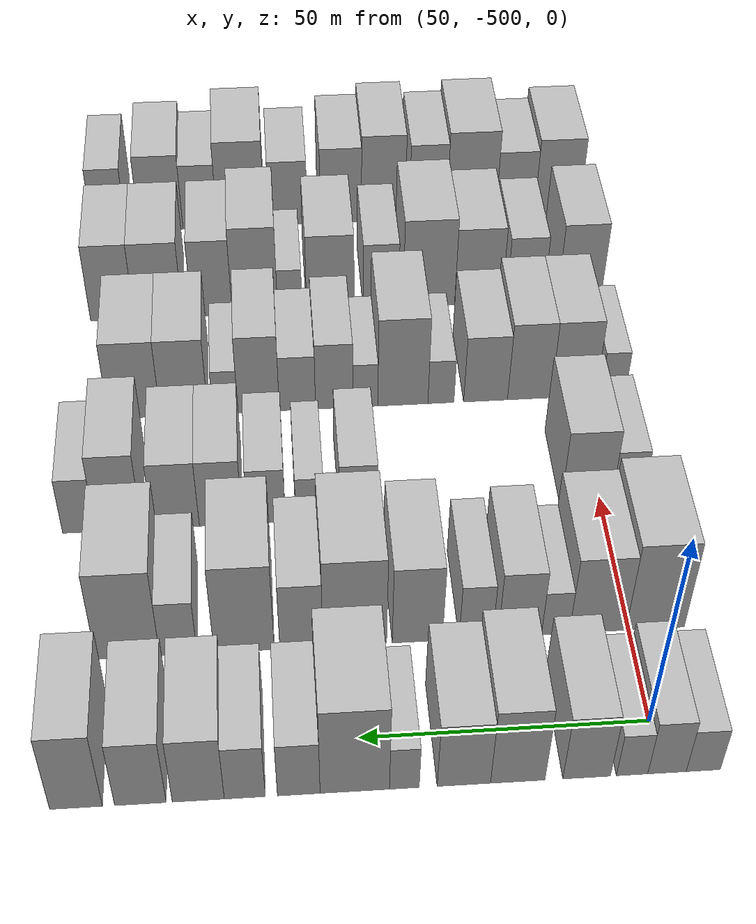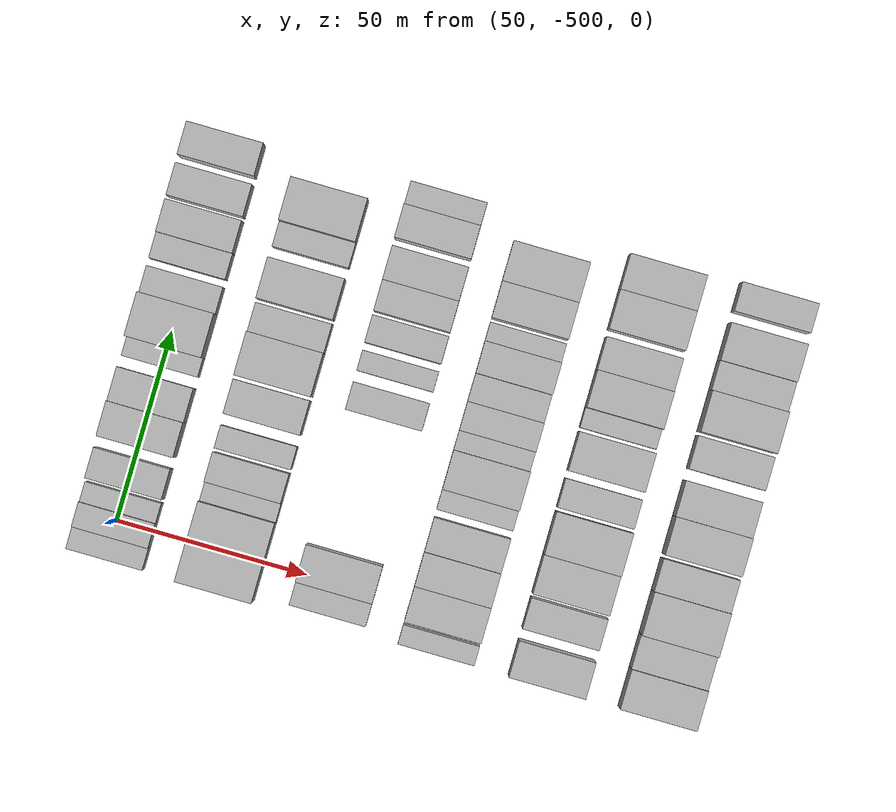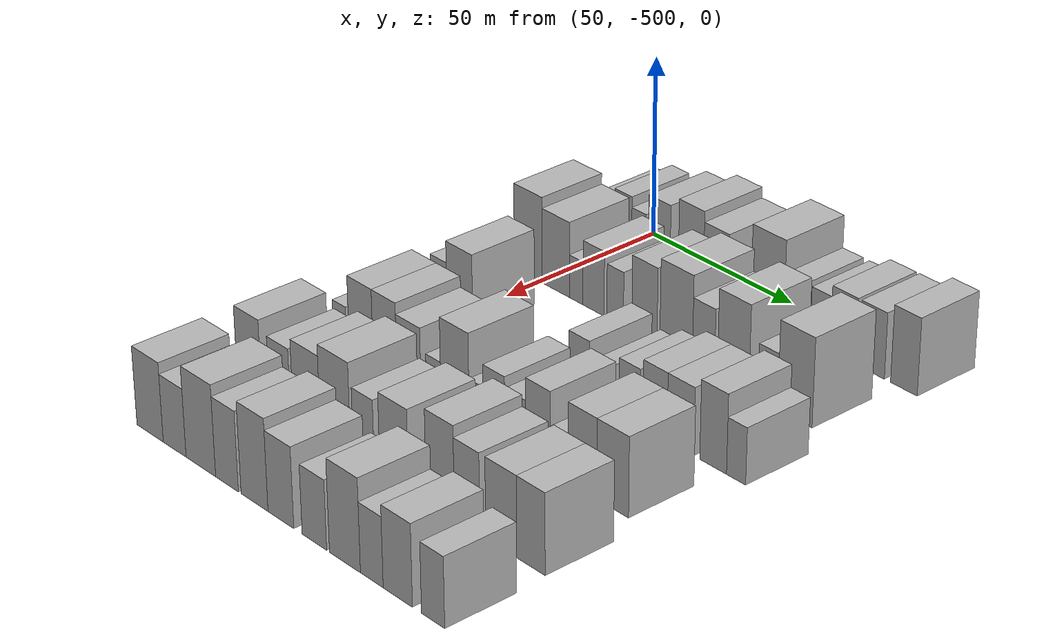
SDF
<sdf version="1.6">
 <world name="default">
  <model name="building_1">
   <static>1</static>
   <pose>50.0000 -507.1129 0 0.000000 0.000000 0.000000</pose>
   <link name="link">
    <pose>0 0 6.00 0 0 0</pose>
    <collision name="collision"><geometry><box><size>20.0000 5.7743 12.0000</size></box></geometry></collision>
    <visual name="visual">
     <cast_shadows>0</cast_shadows>
     <geometry><box><size>20.0000 5.7743 12.0000</size></box></geometry>
     <material>
      <script>
       <uri>model://HANNAS_wall/materials/scripts</uri>
       <uri>model://HANNAS_wall/materials/textures</uri>
       <name>vrc/HANNAS_wall</name>
      </script>
     </material>
    </visual>
   </link>
  </model>
  <model name="building_2">
   <static>1</static>
   <pose>50.0000 -500.9743 0 0.000000 0.000000 0.000000</pose>
   <link name="link">
    <pose>0 0 7.50 0 0 0</pose>
    <collision name="collision"><geometry><box><size>20.0000 6.5029 15.0000</size></box></geometry></collision>
    <visual name="visual">
     <cast_shadows>0</cast_shadows>
     <geometry><box><size>20.0000 6.5029 15.0000</size></box></geometry>
     <material>
      <script>
       <uri>model://HANNAS_wall/materials/scripts</uri>
       <uri>model://HANNAS_wall/materials/textures</uri>
       <name>vrc/HANNAS_wall</name>
      </script>
     </material>
    </visual>
   </link>
  </model>
  <model name="building_3">
   <static>1</static>
   <pose>50.0000 -495.0810 0 0.000000 0.000000 0.000000</pose>
   <link name="link">
    <pose>0 0 6.00 0 0 0</pose>
    <collision name="collision"><geometry><box><size>20.0000 5.2837 12.0000</size></box></geometry></collision>
    <visual name="visual">
     <cast_shadows>0</cast_shadows>
     <geometry><box><size>20.0000 5.2837 12.0000</size></box></geometry>
     <material>
      <script>
       <uri>model://HANNAS_wall/materials/scripts</uri>
       <uri>model://HANNAS_wall/materials/textures</uri>
       <name>vrc/HANNAS_wall</name>
      </script>
     </material>
    </visual>
   </link>
  </model>
  <model name="building_4">
   <static>1</static>
   <pose>50.0000 -487.4331 0 0.000000 0.000000 0.000000</pose>
   <link name="link">
    <pose>0 0 9.00 0 0 0</pose>
    <collision name="collision"><geometry><box><size>20.0000 8.0121 18.0000</size></box></geometry></collision>
    <visual name="visual">
     <cast_shadows>0</cast_shadows>
     <geometry><box><size>20.0000 8.0121 18.0000</size></box></geometry>
     <material>
      <script>
       <uri>model://HANNAS_wall/materials/scripts</uri>
       <uri>model://HANNAS_wall/materials/textures</uri>
       <name>vrc/HANNAS_wall</name>
      </script>
     </material>
    </visual>
   </link>
  </model>
  <model name="building_5">
   <static>1</static>
   <pose>50.0000 -475.8678 0 0.000000 0.000000 0.000000</pose>
   <link name="link">
    <pose>0 0 10.50 0 0 0</pose>
    <collision name="collision"><geometry><box><size>20.0000 9.1184 21.0000</size></box></geometry></collision>
    <visual name="visual">
     <cast_shadows>0</cast_shadows>
     <geometry><box><size>20.0000 9.1184 21.0000</size></box></geometry>
     <material>
      <script>
       <uri>model://HANNAS_wall/materials/scripts</uri>
       <uri>model://HANNAS_wall/materials/textures</uri>
       <name>vrc/HANNAS_wall</name>
      </script>
     </material>
    </visual>
   </link>
  </model>
  <model name="building_6">
   <static>1</static>
   <pose>50.0000 -466.8552 0 0.000000 0.000000 0.000000</pose>
   <link name="link">
    <pose>0 0 9.00 0 0 0</pose>
    <collision name="collision"><geometry><box><size>20.0000 8.9067 18.0000</size></box></geometry></collision>
    <visual name="visual">
     <cast_shadows>0</cast_shadows>
     <geometry><box><size>20.0000 8.9067 18.0000</size></box></geometry>
     <material>
      <script>
       <uri>model://HANNAS_wall/materials/scripts</uri>
       <uri>model://HANNAS_wall/materials/textures</uri>
       <name>vrc/HANNAS_wall</name>
      </script>
     </material>
    </visual>
   </link>
  </model>
  <model name="building_7">
   <static>1</static>
   <pose>50.0000 -456.9294 0 0.000000 0.000000 0.000000</pose>
   <link name="link">
    <pose>0 0 6.00 0 0 0</pose>
    <collision name="collision"><geometry><box><size>20.0000 4.9449 12.0000</size></box></geometry></collision>
    <visual name="visual">
     <cast_shadows>0</cast_shadows>
     <geometry><box><size>20.0000 4.9449 12.0000</size></box></geometry>
     <material>
      <script>
       <uri>model://HANNAS_wall/materials/scripts</uri>
       <uri>model://HANNAS_wall/materials/textures</uri>
       <name>vrc/HANNAS_wall</name>
      </script>
     </material>
    </visual>
   </link>
  </model>
  <model name="building_8">
   <static>1</static>
   <pose>50.0000 -448.7046 0 0.000000 0.000000 0.000000</pose>
   <link name="link">
    <pose>0 0 12.00 0 0 0</pose>
    <collision name="collision"><geometry><box><size>20.0000 11.5046 24.0000</size></box></geometry></collision>
    <visual name="visual">
     <cast_shadows>0</cast_shadows>
     <geometry><box><size>20.0000 11.5046 24.0000</size></box></geometry>
     <material>
      <script>
       <uri>model://HANNAS_wall/materials/scripts</uri>
       <uri>model://HANNAS_wall/materials/textures</uri>
       <name>vrc/HANNAS_wall</name>
      </script>
     </material>
    </visual>
   </link>
  </model>
  <model name="building_9">
   <static>1</static>
   <pose>50.0000 -439.4274 0 0.000000 0.000000 0.000000</pose>
   <link name="link">
    <pose>0 0 7.50 0 0 0</pose>
    <collision name="collision"><geometry><box><size>20.0000 7.0497 15.0000</size></box></geometry></collision>
    <visual name="visual">
     <cast_shadows>0</cast_shadows>
     <geometry><box><size>20.0000 7.0497 15.0000</size></box></geometry>
     <material>
      <script>
       <uri>model://HANNAS_wall/materials/scripts</uri>
       <uri>model://HANNAS_wall/materials/textures</uri>
       <name>vrc/HANNAS_wall</name>
      </script>
     </material>
    </visual>
   </link>
  </model>
  <model name="building_10">
   <static>1</static>
   <pose>50.0000 -430.5206 0 0.000000 0.000000 0.000000</pose>
   <link name="link">
    <pose>0 0 7.50 0 0 0</pose>
    <collision name="collision"><geometry><box><size>20.0000 6.7640 15.0000</size></box></geometry></collision>
    <visual name="visual">
     <cast_shadows>0</cast_shadows>
     <geometry><box><size>20.0000 6.7640 15.0000</size></box></geometry>
     <material>
      <script>
       <uri>model://HANNAS_wall/materials/scripts</uri>
       <uri>model://HANNAS_wall/materials/textures</uri>
       <name>vrc/HANNAS_wall</name>
      </script>
     </material>
    </visual>
   </link>
  </model>
  <model name="building_11">
   <static>1</static>
   <pose>50.0000 -422.8623 0 0.000000 0.000000 0.000000</pose>
   <link name="link">
    <pose>0 0 9.00 0 0 0</pose>
    <collision name="collision"><geometry><box><size>20.0000 8.5525 18.0000</size></box></geometry></collision>
    <visual name="visual">
     <cast_shadows>0</cast_shadows>
     <geometry><box><size>20.0000 8.5525 18.0000</size></box></geometry>
     <material>
      <script>
       <uri>model://HANNAS_wall/materials/scripts</uri>
       <uri>model://HANNAS_wall/materials/textures</uri>
       <name>vrc/HANNAS_wall</name>
      </script>
     </material>
    </visual>
   </link>
  </model>
  <model name="building_12">
   <static>1</static>
   <pose>50.0000 -413.3588 0 0.000000 0.000000 0.000000</pose>
   <link name="link">
    <pose>0 0 9.00 0 0 0</pose>
    <collision name="collision"><geometry><box><size>20.0000 8.4544 18.0000</size></box></geometry></collision>
    <visual name="visual">
     <cast_shadows>0</cast_shadows>
     <geometry><box><size>20.0000 8.4544 18.0000</size></box></geometry>
     <material>
      <script>
       <uri>model://HANNAS_wall/materials/scripts</uri>
       <uri>model://HANNAS_wall/materials/textures</uri>
       <name>vrc/HANNAS_wall</name>
      </script>
     </material>
    </visual>
   </link>
  </model>
  <model name="building_13">
   <static>1</static>
   <pose>50.0000 -402.8247 0 0.000000 0.000000 0.000000</pose>
   <link name="link">
    <pose>0 0 10.50 0 0 0</pose>
    <collision name="collision"><geometry><box><size>20.0000 8.6138 21.0000</size></box></geometry></collision>
    <visual name="visual">
     <cast_shadows>0</cast_shadows>
     <geometry><box><size>20.0000 8.6138 21.0000</size></box></geometry>
     <material>
      <script>
       <uri>model://HANNAS_wall/materials/scripts</uri>
       <uri>model://HANNAS_wall/materials/textures</uri>
       <name>vrc/HANNAS_wall</name>
      </script>
     </material>
    </visual>
   </link>
  </model>
  <model name="building_108">
   <static>1</static>
   <pose>79.0000 -504.6940 0 0.000000 0.000000 0.000000</pose>
   <link name="link">
    <pose>0 0 12.00 0 0 0</pose>
    <collision name="collision"><geometry><box><size>20.0000 10.6121 24.0000</size></box></geometry></collision>
    <visual name="visual">
     <cast_shadows>0</cast_shadows>
     <geometry><box><size>20.0000 10.6121 24.0000</size></box></geometry>
     <material>
      <script>
       <uri>model://HANNAS_wall/materials/scripts</uri>
       <uri>model://HANNAS_wall/materials/textures</uri>
       <name>vrc/HANNAS_wall</name>
      </script>
     </material>
    </visual>
   </link>
  </model>
  <model name="building_109">
   <static>1</static>
   <pose>79.0000 -494.2660 0 0.000000 0.000000 0.000000</pose>
   <link name="link">
    <pose>0 0 10.50 0 0 0</pose>
    <collision name="collision"><geometry><box><size>20.0000 10.2439 21.0000</size></box></geometry></collision>
    <visual name="visual">
     <cast_shadows>0</cast_shadows>
     <geometry><box><size>20.0000 10.2439 21.0000</size></box></geometry>
     <material>
      <script>
       <uri>model://HANNAS_wall/materials/scripts</uri>
       <uri>model://HANNAS_wall/materials/textures</uri>
       <name>vrc/HANNAS_wall</name>
      </script>
     </material>
    </visual>
   </link>
  </model>
  <model name="building_110">
   <static>1</static>
   <pose>79.0000 -486.6266 0 0.000000 0.000000 0.000000</pose>
   <link name="link">
    <pose>0 0 6.00 0 0 0</pose>
    <collision name="collision"><geometry><box><size>20.0000 5.0349 12.0000</size></box></geometry></collision>
    <visual name="visual">
     <cast_shadows>0</cast_shadows>
     <geometry><box><size>20.0000 5.0349 12.0000</size></box></geometry>
     <material>
      <script>
       <uri>model://HANNAS_wall/materials/scripts</uri>
       <uri>model://HANNAS_wall/materials/textures</uri>
       <name>vrc/HANNAS_wall</name>
      </script>
     </material>
    </visual>
   </link>
  </model>
  <model name="building_111">
   <static>1</static>
   <pose>79.0000 -480.2095 0 0.000000 0.000000 0.000000</pose>
   <link name="link">
    <pose>0 0 9.00 0 0 0</pose>
    <collision name="collision"><geometry><box><size>20.0000 7.7994 18.0000</size></box></geometry></collision>
    <visual name="visual">
     <cast_shadows>0</cast_shadows>
     <geometry><box><size>20.0000 7.7994 18.0000</size></box></geometry>
     <material>
      <script>
       <uri>model://HANNAS_wall/materials/scripts</uri>
       <uri>model://HANNAS_wall/materials/textures</uri>
       <name>vrc/HANNAS_wall</name>
      </script>
     </material>
    </visual>
   </link>
  </model>
  <model name="building_112">
   <static>1</static>
   <pose>79.0000 -472.3011 0 0.000000 0.000000 0.000000</pose>
   <link name="link">
    <pose>0 0 7.50 0 0 0</pose>
    <collision name="collision"><geometry><box><size>20.0000 6.0173 15.0000</size></box></geometry></collision>
    <visual name="visual">
     <cast_shadows>0</cast_shadows>
     <geometry><box><size>20.0000 6.0173 15.0000</size></box></geometry>
     <material>
      <script>
       <uri>model://HANNAS_wall/materials/scripts</uri>
       <uri>model://HANNAS_wall/materials/textures</uri>
       <name>vrc/HANNAS_wall</name>
      </script>
     </material>
    </visual>
   </link>
  </model>
  <model name="building_113">
   <static>1</static>
   <pose>79.0000 -461.7940 0 0.000000 0.000000 0.000000</pose>
   <link name="link">
    <pose>0 0 10.50 0 0 0</pose>
    <collision name="collision"><geometry><box><size>20.0000 8.9969 21.0000</size></box></geometry></collision>
    <visual name="visual">
     <cast_shadows>0</cast_shadows>
     <geometry><box><size>20.0000 8.9969 21.0000</size></box></geometry>
     <material>
      <script>
       <uri>model://HANNAS_wall/materials/scripts</uri>
       <uri>model://HANNAS_wall/materials/textures</uri>
       <name>vrc/HANNAS_wall</name>
      </script>
     </material>
    </visual>
   </link>
  </model>
  <model name="building_114">
   <static>1</static>
   <pose>79.0000 -450.5983 0 0.000000 0.000000 0.000000</pose>
   <link name="link">
    <pose>0 0 12.00 0 0 0</pose>
    <collision name="collision"><geometry><box><size>20.0000 11.3943 24.0000</size></box></geometry></collision>
    <visual name="visual">
     <cast_shadows>0</cast_shadows>
     <geometry><box><size>20.0000 11.3943 24.0000</size></box></geometry>
     <material>
      <script>
       <uri>model://HANNAS_wall/materials/scripts</uri>
       <uri>model://HANNAS_wall/materials/textures</uri>
       <name>vrc/HANNAS_wall</name>
      </script>
     </material>
    </visual>
   </link>
  </model>
  <model name="building_115">
   <static>1</static>
   <pose>79.0000 -441.0901 0 0.000000 0.000000 0.000000</pose>
   <link name="link">
    <pose>0 0 9.00 0 0 0</pose>
    <collision name="collision"><geometry><box><size>20.0000 7.6221 18.0000</size></box></geometry></collision>
    <visual name="visual">
     <cast_shadows>0</cast_shadows>
     <geometry><box><size>20.0000 7.6221 18.0000</size></box></geometry>
     <material>
      <script>
       <uri>model://HANNAS_wall/materials/scripts</uri>
       <uri>model://HANNAS_wall/materials/textures</uri>
       <name>vrc/HANNAS_wall</name>
      </script>
     </material>
    </visual>
   </link>
  </model>
  <model name="building_116">
   <static>1</static>
   <pose>79.0000 -430.9364 0 0.000000 0.000000 0.000000</pose>
   <link name="link">
    <pose>0 0 12.00 0 0 0</pose>
    <collision name="collision"><geometry><box><size>20.0000 10.6853 24.0000</size></box></geometry></collision>
    <visual name="visual">
     <cast_shadows>0</cast_shadows>
     <geometry><box><size>20.0000 10.6853 24.0000</size></box></geometry>
     <material>
      <script>
       <uri>model://HANNAS_wall/materials/scripts</uri>
       <uri>model://HANNAS_wall/materials/textures</uri>
       <name>vrc/HANNAS_wall</name>
      </script>
     </material>
    </visual>
   </link>
  </model>
  <model name="building_117">
   <static>1</static>
   <pose>79.0000 -419.2947 0 0.000000 0.000000 0.000000</pose>
   <link name="link">
    <pose>0 0 7.50 0 0 0</pose>
    <collision name="collision"><geometry><box><size>20.0000 6.5981 15.0000</size></box></geometry></collision>
    <visual name="visual">
     <cast_shadows>0</cast_shadows>
     <geometry><box><size>20.0000 6.5981 15.0000</size></box></geometry>
     <material>
      <script>
       <uri>model://HANNAS_wall/materials/scripts</uri>
       <uri>model://HANNAS_wall/materials/textures</uri>
       <name>vrc/HANNAS_wall</name>
      </script>
     </material>
    </visual>
   </link>
  </model>
  <model name="building_118">
   <static>1</static>
   <pose>79.0000 -410.3616 0 0.000000 0.000000 0.000000</pose>
   <link name="link">
    <pose>0 0 12.00 0 0 0</pose>
    <collision name="collision"><geometry><box><size>20.0000 11.2680 24.0000</size></box></geometry></collision>
    <visual name="visual">
     <cast_shadows>0</cast_shadows>
     <geometry><box><size>20.0000 11.2680 24.0000</size></box></geometry>
     <material>
      <script>
       <uri>model://HANNAS_wall/materials/scripts</uri>
       <uri>model://HANNAS_wall/materials/textures</uri>
       <name>vrc/HANNAS_wall</name>
      </script>
     </material>
    </visual>
   </link>
  </model>
  <model name="building_221">
   <static>1</static>
   <pose>108.0000 -504.9345 0 0.000000 0.000000 0.000000</pose>
   <link name="link">
    <pose>0 0 7.50 0 0 0</pose>
    <collision name="collision"><geometry><box><size>20.0000 6.1309 15.0000</size></box></geometry></collision>
    <visual name="visual">
     <cast_shadows>0</cast_shadows>
     <geometry><box><size>20.0000 6.1309 15.0000</size></box></geometry>
     <material>
      <script>
       <uri>model://HANNAS_wall/materials/scripts</uri>
       <uri>model://HANNAS_wall/materials/textures</uri>
       <name>vrc/HANNAS_wall</name>
      </script>
     </material>
    </visual>
   </link>
  </model>
  <model name="building_222">
   <static>1</static>
   <pose>108.0000 -496.9784 0 0.000000 0.000000 0.000000</pose>
   <link name="link">
    <pose>0 0 10.50 0 0 0</pose>
    <collision name="collision"><geometry><box><size>20.0000 9.7813 21.0000</size></box></geometry></collision>
    <visual name="visual">
     <cast_shadows>0</cast_shadows>
     <geometry><box><size>20.0000 9.7813 21.0000</size></box></geometry>
     <material>
      <script>
       <uri>model://HANNAS_wall/materials/scripts</uri>
       <uri>model://HANNAS_wall/materials/textures</uri>
       <name>vrc/HANNAS_wall</name>
      </script>
     </material>
    </visual>
   </link>
  </model>
  <model name="building_223">
   <static>1</static>
   <pose>108.0000 -453.2452 0 0.000000 0.000000 0.000000</pose>
   <link name="link">
    <pose>0 0 7.50 0 0 0</pose>
    <collision name="collision"><geometry><box><size>20.0000 7.2284 15.0000</size></box></geometry></collision>
    <visual name="visual">
     <cast_shadows>0</cast_shadows>
     <geometry><box><size>20.0000 7.2284 15.0000</size></box></geometry>
     <material>
      <script>
       <uri>model://HANNAS_wall/materials/scripts</uri>
       <uri>model://HANNAS_wall/materials/textures</uri>
       <name>vrc/HANNAS_wall</name>
      </script>
     </material>
    </visual>
   </link>
  </model>
  <model name="building_224">
   <static>1</static>
   <pose>108.0000 -443.9686 0 0.000000 0.000000 0.000000</pose>
   <link name="link">
    <pose>0 0 6.00 0 0 0</pose>
    <collision name="collision"><geometry><box><size>20.0000 5.3249 12.0000</size></box></geometry></collision>
    <visual name="visual">
     <cast_shadows>0</cast_shadows>
     <geometry><box><size>20.0000 5.3249 12.0000</size></box></geometry>
     <material>
      <script>
       <uri>model://HANNAS_wall/materials/scripts</uri>
       <uri>model://HANNAS_wall/materials/textures</uri>
       <name>vrc/HANNAS_wall</name>
      </script>
     </material>
    </visual>
   </link>
  </model>
  <model name="building_225">
   <static>1</static>
   <pose>108.0000 -435.7074 0 0.000000 0.000000 0.000000</pose>
   <link name="link">
    <pose>0 0 7.50 0 0 0</pose>
    <collision name="collision"><geometry><box><size>20.0000 7.1974 15.0000</size></box></geometry></collision>
    <visual name="visual">
     <cast_shadows>0</cast_shadows>
     <geometry><box><size>20.0000 7.1974 15.0000</size></box></geometry>
     <material>
      <script>
       <uri>model://HANNAS_wall/materials/scripts</uri>
       <uri>model://HANNAS_wall/materials/textures</uri>
       <name>vrc/HANNAS_wall</name>
      </script>
     </material>
    </visual>
   </link>
  </model>
  <model name="building_226">
   <static>1</static>
   <pose>108.0000 -427.0299 0 0.000000 0.000000 0.000000</pose>
   <link name="link">
    <pose>0 0 9.00 0 0 0</pose>
    <collision name="collision"><geometry><box><size>20.0000 8.1577 18.0000</size></box></geometry></collision>
    <visual name="visual">
     <cast_shadows>0</cast_shadows>
     <geometry><box><size>20.0000 8.1577 18.0000</size></box></geometry>
     <material>
      <script>
       <uri>model://HANNAS_wall/materials/scripts</uri>
       <uri>model://HANNAS_wall/materials/textures</uri>
       <name>vrc/HANNAS_wall</name>
      </script>
     </material>
    </visual>
   </link>
  </model>
  <model name="building_227">
   <static>1</static>
   <pose>108.0000 -418.5067 0 0.000000 0.000000 0.000000</pose>
   <link name="link">
    <pose>0 0 9.00 0 0 0</pose>
    <collision name="collision"><geometry><box><size>20.0000 8.8886 18.0000</size></box></geometry></collision>
    <visual name="visual">
     <cast_shadows>0</cast_shadows>
     <geometry><box><size>20.0000 8.8886 18.0000</size></box></geometry>
     <material>
      <script>
       <uri>model://HANNAS_wall/materials/scripts</uri>
       <uri>model://HANNAS_wall/materials/textures</uri>
       <name>vrc/HANNAS_wall</name>
      </script>
     </material>
    </visual>
   </link>
  </model>
  <model name="building_228">
   <static>1</static>
   <pose>108.0000 -407.6930 0 0.000000 0.000000 0.000000</pose>
   <link name="link">
    <pose>0 0 10.50 0 0 0</pose>
    <collision name="collision"><geometry><box><size>20.0000 8.7388 21.0000</size></box></geometry></collision>
    <visual name="visual">
     <cast_shadows>0</cast_shadows>
     <geometry><box><size>20.0000 8.7388 21.0000</size></box></geometry>
     <material>
      <script>
       <uri>model://HANNAS_wall/materials/scripts</uri>
       <uri>model://HANNAS_wall/materials/textures</uri>
       <name>vrc/HANNAS_wall</name>
      </script>
     </material>
    </visual>
   </link>
  </model>
  <model name="building_229">
   <static>1</static>
   <pose>108.0000 -400.2310 0 0.000000 0.000000 0.000000</pose>
   <link name="link">
    <pose>0 0 7.50 0 0 0</pose>
    <collision name="collision"><geometry><box><size>20.0000 6.1852 15.0000</size></box></geometry></collision>
    <visual name="visual">
     <cast_shadows>0</cast_shadows>
     <geometry><box><size>20.0000 6.1852 15.0000</size></box></geometry>
     <material>
      <script>
       <uri>model://HANNAS_wall/materials/scripts</uri>
       <uri>model://HANNAS_wall/materials/textures</uri>
       <name>vrc/HANNAS_wall</name>
      </script>
     </material>
    </visual>
   </link>
  </model>
  <model name="building_328">
   <static>1</static>
   <pose>137.0000 -507.4512 0 0.000000 0.000000 0.000000</pose>
   <link name="link">
    <pose>0 0 6.00 0 0 0</pose>
    <collision name="collision"><geometry><box><size>20.0000 5.0975 12.0000</size></box></geometry></collision>
    <visual name="visual">
     <cast_shadows>0</cast_shadows>
     <geometry><box><size>20.0000 5.0975 12.0000</size></box></geometry>
     <material>
      <script>
       <uri>model://HANNAS_wall/materials/scripts</uri>
       <uri>model://HANNAS_wall/materials/textures</uri>
       <name>vrc/HANNAS_wall</name>
      </script>
     </material>
    </visual>
   </link>
  </model>
  <model name="building_329">
   <static>1</static>
   <pose>137.0000 -499.2824 0 0.000000 0.000000 0.000000</pose>
   <link name="link">
    <pose>0 0 10.50 0 0 0</pose>
    <collision name="collision"><geometry><box><size>20.0000 9.2402 21.0000</size></box></geometry></collision>
    <visual name="visual">
     <cast_shadows>0</cast_shadows>
     <geometry><box><size>20.0000 9.2402 21.0000</size></box></geometry>
     <material>
      <script>
       <uri>model://HANNAS_wall/materials/scripts</uri>
       <uri>model://HANNAS_wall/materials/textures</uri>
       <name>vrc/HANNAS_wall</name>
      </script>
     </material>
    </visual>
   </link>
  </model>
  <model name="building_330">
   <static>1</static>
   <pose>137.0000 -490.1812 0 0.000000 0.000000 0.000000</pose>
   <link name="link">
    <pose>0 0 10.50 0 0 0</pose>
    <collision name="collision"><geometry><box><size>20.0000 8.9622 21.0000</size></box></geometry></collision>
    <visual name="visual">
     <cast_shadows>0</cast_shadows>
     <geometry><box><size>20.0000 8.9622 21.0000</size></box></geometry>
     <material>
      <script>
       <uri>model://HANNAS_wall/materials/scripts</uri>
       <uri>model://HANNAS_wall/materials/textures</uri>
       <name>vrc/HANNAS_wall</name>
      </script>
     </material>
    </visual>
   </link>
  </model>
  <model name="building_331">
   <static>1</static>
   <pose>137.0000 -481.2010 0 0.000000 0.000000 0.000000</pose>
   <link name="link">
    <pose>0 0 9.00 0 0 0</pose>
    <collision name="collision"><geometry><box><size>20.0000 8.9981 18.0000</size></box></geometry></collision>
    <visual name="visual">
     <cast_shadows>0</cast_shadows>
     <geometry><box><size>20.0000 8.9981 18.0000</size></box></geometry>
     <material>
      <script>
       <uri>model://HANNAS_wall/materials/scripts</uri>
       <uri>model://HANNAS_wall/materials/textures</uri>
       <name>vrc/HANNAS_wall</name>
      </script>
     </material>
    </visual>
   </link>
  </model>
  <model name="building_332">
   <static>1</static>
   <pose>137.0000 -472.0316 0 0.000000 0.000000 0.000000</pose>
   <link name="link">
    <pose>0 0 6.00 0 0 0</pose>
    <collision name="collision"><geometry><box><size>20.0000 5.3407 12.0000</size></box></geometry></collision>
    <visual name="visual">
     <cast_shadows>0</cast_shadows>
     <geometry><box><size>20.0000 5.3407 12.0000</size></box></geometry>
     <material>
      <script>
       <uri>model://HANNAS_wall/materials/scripts</uri>
       <uri>model://HANNAS_wall/materials/textures</uri>
       <name>vrc/HANNAS_wall</name>
      </script>
     </material>
    </visual>
   </link>
  </model>
  <model name="building_333">
   <static>1</static>
   <pose>137.0000 -464.2401 0 0.000000 0.000000 0.000000</pose>
   <link name="link">
    <pose>0 0 12.00 0 0 0</pose>
    <collision name="collision"><geometry><box><size>20.0000 10.2423 24.0000</size></box></geometry></collision>
    <visual name="visual">
     <cast_shadows>0</cast_shadows>
     <geometry><box><size>20.0000 10.2423 24.0000</size></box></geometry>
     <material>
      <script>
       <uri>model://HANNAS_wall/materials/scripts</uri>
       <uri>model://HANNAS_wall/materials/textures</uri>
       <name>vrc/HANNAS_wall</name>
      </script>
     </material>
    </visual>
   </link>
  </model>
  <model name="building_334">
   <static>1</static>
   <pose>137.0000 -456.5639 0 0.000000 0.000000 0.000000</pose>
   <link name="link">
    <pose>0 0 6.00 0 0 0</pose>
    <collision name="collision"><geometry><box><size>20.0000 5.1101 12.0000</size></box></geometry></collision>
    <visual name="visual">
     <cast_shadows>0</cast_shadows>
     <geometry><box><size>20.0000 5.1101 12.0000</size></box></geometry>
     <material>
      <script>
       <uri>model://HANNAS_wall/materials/scripts</uri>
       <uri>model://HANNAS_wall/materials/textures</uri>
       <name>vrc/HANNAS_wall</name>
      </script>
     </material>
    </visual>
   </link>
  </model>
  <model name="building_335">
   <static>1</static>
   <pose>137.0000 -450.2246 0 0.000000 0.000000 0.000000</pose>
   <link name="link">
    <pose>0 0 9.00 0 0 0</pose>
    <collision name="collision"><geometry><box><size>20.0000 7.5686 18.0000</size></box></geometry></collision>
    <visual name="visual">
     <cast_shadows>0</cast_shadows>
     <geometry><box><size>20.0000 7.5686 18.0000</size></box></geometry>
     <material>
      <script>
       <uri>model://HANNAS_wall/materials/scripts</uri>
       <uri>model://HANNAS_wall/materials/textures</uri>
       <name>vrc/HANNAS_wall</name>
      </script>
     </material>
    </visual>
   </link>
  </model>
  <model name="building_336">
   <static>1</static>
   <pose>137.0000 -442.7728 0 0.000000 0.000000 0.000000</pose>
   <link name="link">
    <pose>0 0 7.50 0 0 0</pose>
    <collision name="collision"><geometry><box><size>20.0000 7.3348 15.0000</size></box></geometry></collision>
    <visual name="visual">
     <cast_shadows>0</cast_shadows>
     <geometry><box><size>20.0000 7.3348 15.0000</size></box></geometry>
     <material>
      <script>
       <uri>model://HANNAS_wall/materials/scripts</uri>
       <uri>model://HANNAS_wall/materials/textures</uri>
       <name>vrc/HANNAS_wall</name>
      </script>
     </material>
    </visual>
   </link>
  </model>
  <model name="building_337">
   <static>1</static>
   <pose>137.0000 -434.9035 0 0.000000 0.000000 0.000000</pose>
   <link name="link">
    <pose>0 0 10.50 0 0 0</pose>
    <collision name="collision"><geometry><box><size>20.0000 8.4039 21.0000</size></box></geometry></collision>
    <visual name="visual">
     <cast_shadows>0</cast_shadows>
     <geometry><box><size>20.0000 8.4039 21.0000</size></box></geometry>
     <material>
      <script>
       <uri>model://HANNAS_wall/materials/scripts</uri>
       <uri>model://HANNAS_wall/materials/textures</uri>
       <name>vrc/HANNAS_wall</name>
      </script>
     </material>
    </visual>
   </link>
  </model>
  <model name="building_338">
   <static>1</static>
   <pose>137.0000 -428.1678 0 0.000000 0.000000 0.000000</pose>
   <link name="link">
    <pose>0 0 6.00 0 0 0</pose>
    <collision name="collision"><geometry><box><size>20.0000 5.0674 12.0000</size></box></geometry></collision>
    <visual name="visual">
     <cast_shadows>0</cast_shadows>
     <geometry><box><size>20.0000 5.0674 12.0000</size></box></geometry>
     <material>
      <script>
       <uri>model://HANNAS_wall/materials/scripts</uri>
       <uri>model://HANNAS_wall/materials/textures</uri>
       <name>vrc/HANNAS_wall</name>
      </script>
     </material>
    </visual>
   </link>
  </model>
  <model name="building_339">
   <static>1</static>
   <pose>137.0000 -419.8349 0 0.000000 0.000000 0.000000</pose>
   <link name="link">
    <pose>0 0 10.50 0 0 0</pose>
    <collision name="collision"><geometry><box><size>20.0000 9.5983 21.0000</size></box></geometry></collision>
    <visual name="visual">
     <cast_shadows>0</cast_shadows>
     <geometry><box><size>20.0000 9.5983 21.0000</size></box></geometry>
     <material>
      <script>
       <uri>model://HANNAS_wall/materials/scripts</uri>
       <uri>model://HANNAS_wall/materials/textures</uri>
       <name>vrc/HANNAS_wall</name>
      </script>
     </material>
    </visual>
   </link>
  </model>
  <model name="building_340">
   <static>1</static>
   <pose>137.0000 -409.8062 0 0.000000 0.000000 0.000000</pose>
   <link name="link">
    <pose>0 0 10.50 0 0 0</pose>
    <collision name="collision"><geometry><box><size>20.0000 10.4593 21.0000</size></box></geometry></collision>
    <visual name="visual">
     <cast_shadows>0</cast_shadows>
     <geometry><box><size>20.0000 10.4593 21.0000</size></box></geometry>
     <material>
      <script>
       <uri>model://HANNAS_wall/materials/scripts</uri>
       <uri>model://HANNAS_wall/materials/textures</uri>
       <name>vrc/HANNAS_wall</name>
      </script>
     </material>
    </visual>
   </link>
  </model>
  <model name="building_447">
   <static>1</static>
   <pose>166.0000 -505.2337 0 0.000000 0.000000 0.000000</pose>
   <link name="link">
    <pose>0 0 10.50 0 0 0</pose>
    <collision name="collision"><geometry><box><size>20.0000 9.5325 21.0000</size></box></geometry></collision>
    <visual name="visual">
     <cast_shadows>0</cast_shadows>
     <geometry><box><size>20.0000 9.5325 21.0000</size></box></geometry>
     <material>
      <script>
       <uri>model://HANNAS_wall/materials/scripts</uri>
       <uri>model://HANNAS_wall/materials/textures</uri>
       <name>vrc/HANNAS_wall</name>
      </script>
     </material>
    </visual>
   </link>
  </model>
  <model name="building_448">
   <static>1</static>
   <pose>166.0000 -493.3933 0 0.000000 0.000000 0.000000</pose>
   <link name="link">
    <pose>0 0 9.00 0 0 0</pose>
    <collision name="collision"><geometry><box><size>20.0000 8.1483 18.0000</size></box></geometry></collision>
    <visual name="visual">
     <cast_shadows>0</cast_shadows>
     <geometry><box><size>20.0000 8.1483 18.0000</size></box></geometry>
     <material>
      <script>
       <uri>model://HANNAS_wall/materials/scripts</uri>
       <uri>model://HANNAS_wall/materials/textures</uri>
       <name>vrc/HANNAS_wall</name>
      </script>
     </material>
    </visual>
   </link>
  </model>
  <model name="building_449">
   <static>1</static>
   <pose>166.0000 -483.1605 0 0.000000 0.000000 0.000000</pose>
   <link name="link">
    <pose>0 0 10.50 0 0 0</pose>
    <collision name="collision"><geometry><box><size>20.0000 10.3173 21.0000</size></box></geometry></collision>
    <visual name="visual">
     <cast_shadows>0</cast_shadows>
     <geometry><box><size>20.0000 10.3173 21.0000</size></box></geometry>
     <material>
      <script>
       <uri>model://HANNAS_wall/materials/scripts</uri>
       <uri>model://HANNAS_wall/materials/textures</uri>
       <name>vrc/HANNAS_wall</name>
      </script>
     </material>
    </visual>
   </link>
  </model>
  <model name="building_450">
   <static>1</static>
   <pose>166.0000 -472.3981 0 0.000000 0.000000 0.000000</pose>
   <link name="link">
    <pose>0 0 12.00 0 0 0</pose>
    <collision name="collision"><geometry><box><size>20.0000 11.2076 24.0000</size></box></geometry></collision>
    <visual name="visual">
     <cast_shadows>0</cast_shadows>
     <geometry><box><size>20.0000 11.2076 24.0000</size></box></geometry>
     <material>
      <script>
       <uri>model://HANNAS_wall/materials/scripts</uri>
       <uri>model://HANNAS_wall/materials/textures</uri>
       <name>vrc/HANNAS_wall</name>
      </script>
     </material>
    </visual>
   </link>
  </model>
  <model name="building_451">
   <static>1</static>
   <pose>166.0000 -461.9822 0 0.000000 0.000000 0.000000</pose>
   <link name="link">
    <pose>0 0 9.00 0 0 0</pose>
    <collision name="collision"><geometry><box><size>20.0000 7.6242 18.0000</size></box></geometry></collision>
    <visual name="visual">
     <cast_shadows>0</cast_shadows>
     <geometry><box><size>20.0000 7.6242 18.0000</size></box></geometry>
     <material>
      <script>
       <uri>model://HANNAS_wall/materials/scripts</uri>
       <uri>model://HANNAS_wall/materials/textures</uri>
       <name>vrc/HANNAS_wall</name>
      </script>
     </material>
    </visual>
   </link>
  </model>
  <model name="building_452">
   <static>1</static>
   <pose>166.0000 -451.0585 0 0.000000 0.000000 0.000000</pose>
   <link name="link">
    <pose>0 0 10.50 0 0 0</pose>
    <collision name="collision"><geometry><box><size>20.0000 10.2232 21.0000</size></box></geometry></collision>
    <visual name="visual">
     <cast_shadows>0</cast_shadows>
     <geometry><box><size>20.0000 10.2232 21.0000</size></box></geometry>
     <material>
      <script>
       <uri>model://HANNAS_wall/materials/scripts</uri>
       <uri>model://HANNAS_wall/materials/textures</uri>
       <name>vrc/HANNAS_wall</name>
      </script>
     </material>
    </visual>
   </link>
  </model>
  <model name="building_453">
   <static>1</static>
   <pose>166.0000 -442.3233 0 0.000000 0.000000 0.000000</pose>
   <link name="link">
    <pose>0 0 6.00 0 0 0</pose>
    <collision name="collision"><geometry><box><size>20.0000 5.2472 12.0000</size></box></geometry></collision>
    <visual name="visual">
     <cast_shadows>0</cast_shadows>
     <geometry><box><size>20.0000 5.2472 12.0000</size></box></geometry>
     <material>
      <script>
       <uri>model://HANNAS_wall/materials/scripts</uri>
       <uri>model://HANNAS_wall/materials/textures</uri>
       <name>vrc/HANNAS_wall</name>
      </script>
     </material>
    </visual>
   </link>
  </model>
  <model name="building_454">
   <static>1</static>
   <pose>166.0000 -434.8086 0 0.000000 0.000000 0.000000</pose>
   <link name="link">
    <pose>0 0 12.00 0 0 0</pose>
    <collision name="collision"><geometry><box><size>20.0000 9.7822 24.0000</size></box></geometry></collision>
    <visual name="visual">
     <cast_shadows>0</cast_shadows>
     <geometry><box><size>20.0000 9.7822 24.0000</size></box></geometry>
     <material>
      <script>
       <uri>model://HANNAS_wall/materials/scripts</uri>
       <uri>model://HANNAS_wall/materials/textures</uri>
       <name>vrc/HANNAS_wall</name>
      </script>
     </material>
    </visual>
   </link>
  </model>
  <model name="building_455">
   <static>1</static>
   <pose>166.0000 -425.5867 0 0.000000 0.000000 0.000000</pose>
   <link name="link">
    <pose>0 0 10.50 0 0 0</pose>
    <collision name="collision"><geometry><box><size>20.0000 8.6617 21.0000</size></box></geometry></collision>
    <visual name="visual">
     <cast_shadows>0</cast_shadows>
     <geometry><box><size>20.0000 8.6617 21.0000</size></box></geometry>
     <material>
      <script>
       <uri>model://HANNAS_wall/materials/scripts</uri>
       <uri>model://HANNAS_wall/materials/textures</uri>
       <name>vrc/HANNAS_wall</name>
      </script>
     </material>
    </visual>
   </link>
  </model>
  <model name="building_456">
   <static>1</static>
   <pose>166.0000 -414.0834 0 0.000000 0.000000 0.000000</pose>
   <link name="link">
    <pose>0 0 10.50 0 0 0</pose>
    <collision name="collision"><geometry><box><size>20.0000 10.3449 21.0000</size></box></geometry></collision>
    <visual name="visual">
     <cast_shadows>0</cast_shadows>
     <geometry><box><size>20.0000 10.3449 21.0000</size></box></geometry>
     <material>
      <script>
       <uri>model://HANNAS_wall/materials/scripts</uri>
       <uri>model://HANNAS_wall/materials/textures</uri>
       <name>vrc/HANNAS_wall</name>
      </script>
     </material>
    </visual>
   </link>
  </model>
  <model name="building_457">
   <static>1</static>
   <pose>166.0000 -404.2522 0 0.000000 0.000000 0.000000</pose>
   <link name="link">
    <pose>0 0 10.50 0 0 0</pose>
    <collision name="collision"><geometry><box><size>20.0000 9.3176 21.0000</size></box></geometry></collision>
    <visual name="visual">
     <cast_shadows>0</cast_shadows>
     <geometry><box><size>20.0000 9.3176 21.0000</size></box></geometry>
     <material>
      <script>
       <uri>model://HANNAS_wall/materials/scripts</uri>
       <uri>model://HANNAS_wall/materials/textures</uri>
       <name>vrc/HANNAS_wall</name>
      </script>
     </material>
    </visual>
   </link>
  </model>
  <model name="building_565">
   <static>1</static>
   <pose>195.0000 -504.7938 0 0.000000 0.000000 0.000000</pose>
   <link name="link">
    <pose>0 0 10.50 0 0 0</pose>
    <collision name="collision"><geometry><box><size>20.0000 10.4124 21.0000</size></box></geometry></collision>
    <visual name="visual">
     <cast_shadows>0</cast_shadows>
     <geometry><box><size>20.0000 10.4124 21.0000</size></box></geometry>
     <material>
      <script>
       <uri>model://HANNAS_wall/materials/scripts</uri>
       <uri>model://HANNAS_wall/materials/textures</uri>
       <name>vrc/HANNAS_wall</name>
      </script>
     </material>
    </visual>
   </link>
  </model>
  <model name="building_566">
   <static>1</static>
   <pose>195.0000 -495.1299 0 0.000000 0.000000 0.000000</pose>
   <link name="link">
    <pose>0 0 9.00 0 0 0</pose>
    <collision name="collision"><geometry><box><size>20.0000 8.9155 18.0000</size></box></geometry></collision>
    <visual name="visual">
     <cast_shadows>0</cast_shadows>
     <geometry><box><size>20.0000 8.9155 18.0000</size></box></geometry>
     <material>
      <script>
       <uri>model://HANNAS_wall/materials/scripts</uri>
       <uri>model://HANNAS_wall/materials/textures</uri>
       <name>vrc/HANNAS_wall</name>
      </script>
     </material>
    </visual>
   </link>
  </model>
  <model name="building_567">
   <static>1</static>
   <pose>195.0000 -484.9989 0 0.000000 0.000000 0.000000</pose>
   <link name="link">
    <pose>0 0 12.00 0 0 0</pose>
    <collision name="collision"><geometry><box><size>20.0000 11.3464 24.0000</size></box></geometry></collision>
    <visual name="visual">
     <cast_shadows>0</cast_shadows>
     <geometry><box><size>20.0000 11.3464 24.0000</size></box></geometry>
     <material>
      <script>
       <uri>model://HANNAS_wall/materials/scripts</uri>
       <uri>model://HANNAS_wall/materials/textures</uri>
       <name>vrc/HANNAS_wall</name>
      </script>
     </material>
    </visual>
   </link>
  </model>
  <model name="building_568">
   <static>1</static>
   <pose>195.0000 -475.0340 0 0.000000 0.000000 0.000000</pose>
   <link name="link">
    <pose>0 0 10.50 0 0 0</pose>
    <collision name="collision"><geometry><box><size>20.0000 8.5834 21.0000</size></box></geometry></collision>
    <visual name="visual">
     <cast_shadows>0</cast_shadows>
     <geometry><box><size>20.0000 8.5834 21.0000</size></box></geometry>
     <material>
      <script>
       <uri>model://HANNAS_wall/materials/scripts</uri>
       <uri>model://HANNAS_wall/materials/textures</uri>
       <name>vrc/HANNAS_wall</name>
      </script>
     </material>
    </visual>
   </link>
  </model>
  <model name="building_569">
   <static>1</static>
   <pose>195.0000 -464.7588 0 0.000000 0.000000 0.000000</pose>
   <link name="link">
    <pose>0 0 12.00 0 0 0</pose>
    <collision name="collision"><geometry><box><size>20.0000 9.9670 24.0000</size></box></geometry></collision>
    <visual name="visual">
     <cast_shadows>0</cast_shadows>
     <geometry><box><size>20.0000 9.9670 24.0000</size></box></geometry>
     <material>
      <script>
       <uri>model://HANNAS_wall/materials/scripts</uri>
       <uri>model://HANNAS_wall/materials/textures</uri>
       <name>vrc/HANNAS_wall</name>
      </script>
     </material>
    </visual>
   </link>
  </model>
  <model name="building_570">
   <static>1</static>
   <pose>195.0000 -455.0877 0 0.000000 0.000000 0.000000</pose>
   <link name="link">
    <pose>0 0 10.50 0 0 0</pose>
    <collision name="collision"><geometry><box><size>20.0000 9.3752 21.0000</size></box></geometry></collision>
    <visual name="visual">
     <cast_shadows>0</cast_shadows>
     <geometry><box><size>20.0000 9.3752 21.0000</size></box></geometry>
     <material>
      <script>
       <uri>model://HANNAS_wall/materials/scripts</uri>
       <uri>model://HANNAS_wall/materials/textures</uri>
       <name>vrc/HANNAS_wall</name>
      </script>
     </material>
    </visual>
   </link>
  </model>
  <model name="building_571">
   <static>1</static>
   <pose>195.0000 -443.0427 0 0.000000 0.000000 0.000000</pose>
   <link name="link">
    <pose>0 0 9.00 0 0 0</pose>
    <collision name="collision"><geometry><box><size>20.0000 8.7148 18.0000</size></box></geometry></collision>
    <visual name="visual">
     <cast_shadows>0</cast_shadows>
     <geometry><box><size>20.0000 8.7148 18.0000</size></box></geometry>
     <material>
      <script>
       <uri>model://HANNAS_wall/materials/scripts</uri>
       <uri>model://HANNAS_wall/materials/textures</uri>
       <name>vrc/HANNAS_wall</name>
      </script>
     </material>
    </visual>
   </link>
  </model>
  <model name="building_572">
   <static>1</static>
   <pose>195.0000 -432.2899 0 0.000000 0.000000 0.000000</pose>
   <link name="link">
    <pose>0 0 12.00 0 0 0</pose>
    <collision name="collision"><geometry><box><size>20.0000 10.7906 24.0000</size></box></geometry></collision>
    <visual name="visual">
     <cast_shadows>0</cast_shadows>
     <geometry><box><size>20.0000 10.7906 24.0000</size></box></geometry>
     <material>
      <script>
       <uri>model://HANNAS_wall/materials/scripts</uri>
       <uri>model://HANNAS_wall/materials/textures</uri>
       <name>vrc/HANNAS_wall</name>
      </script>
     </material>
    </visual>
   </link>
  </model>
  <model name="building_573">
   <static>1</static>
   <pose>195.0000 -422.9969 0 0.000000 0.000000 0.000000</pose>
   <link name="link">
    <pose>0 0 9.00 0 0 0</pose>
    <collision name="collision"><geometry><box><size>20.0000 7.7955 18.0000</size></box></geometry></collision>
    <visual name="visual">
     <cast_shadows>0</cast_shadows>
     <geometry><box><size>20.0000 7.7955 18.0000</size></box></geometry>
     <material>
      <script>
       <uri>model://HANNAS_wall/materials/scripts</uri>
       <uri>model://HANNAS_wall/materials/textures</uri>
       <name>vrc/HANNAS_wall</name>
      </script>
     </material>
    </visual>
   </link>
  </model>
  <model name="building_574">
   <static>1</static>
   <pose>195.0000 -414.1646 0 0.000000 0.000000 0.000000</pose>
   <link name="link">
    <pose>0 0 10.50 0 0 0</pose>
    <collision name="collision"><geometry><box><size>20.0000 9.8691 21.0000</size></box></geometry></collision>
    <visual name="visual">
     <cast_shadows>0</cast_shadows>
     <geometry><box><size>20.0000 9.8691 21.0000</size></box></geometry>
     <material>
      <script>
       <uri>model://HANNAS_wall/materials/scripts</uri>
       <uri>model://HANNAS_wall/materials/textures</uri>
       <name>vrc/HANNAS_wall</name>
      </script>
     </material>
    </visual>
   </link>
  </model>
  <model name="building_575">
   <static>1</static>
   <pose>195.0000 -402.4021 0 0.000000 0.000000 0.000000</pose>
   <link name="link">
    <pose>0 0 9.00 0 0 0</pose>
    <collision name="collision"><geometry><box><size>20.0000 7.6559 18.0000</size></box></geometry></collision>
    <visual name="visual">
     <cast_shadows>0</cast_shadows>
     <geometry><box><size>20.0000 7.6559 18.0000</size></box></geometry>
     <material>
      <script>
       <uri>model://HANNAS_wall/materials/scripts</uri>
       <uri>model://HANNAS_wall/materials/textures</uri>
       <name>vrc/HANNAS_wall</name>
      </script>
     </material>
    </visual>
   </link>
  </model>
 </world>
</sdf>
